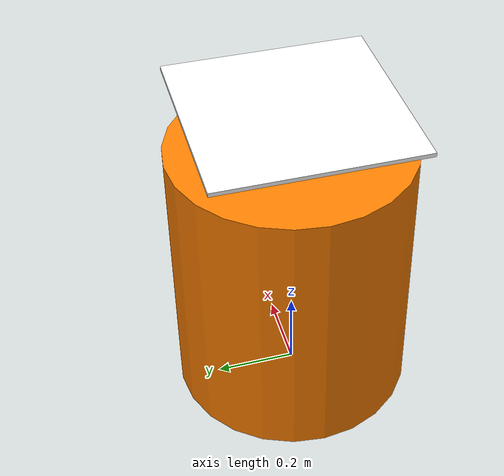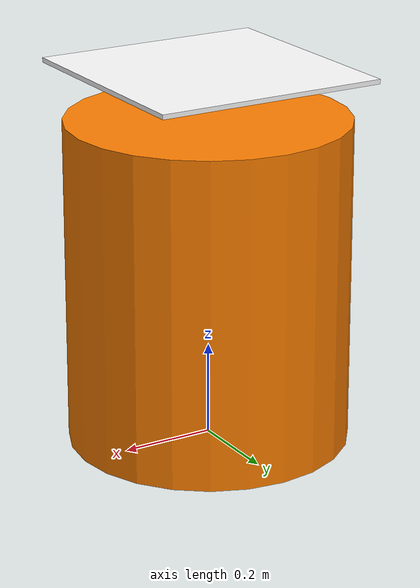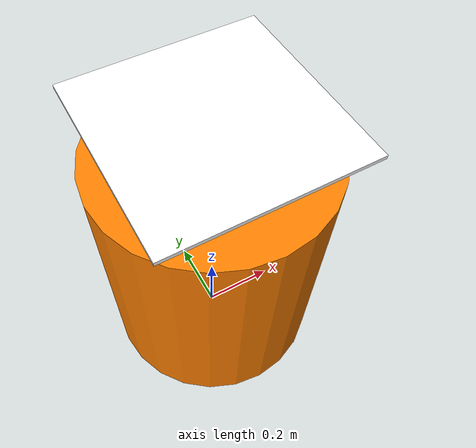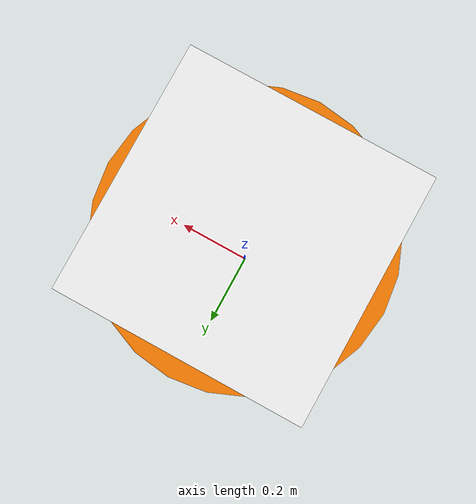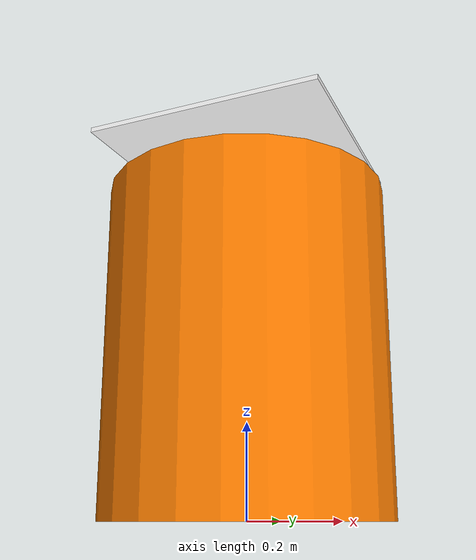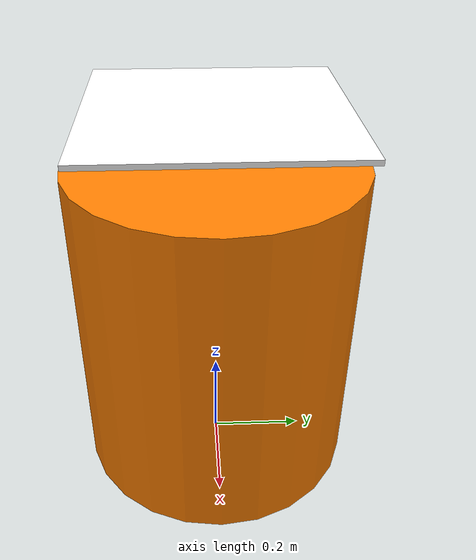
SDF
<?xml version="1.0"?>
<sdf version="1.9">
  <model name="apriltag_cone_0">
    <static>true</static>
    <link name="link">
      <!-- Orange cone base -->
      <visual name="cone">
        <pose>0 0 0.35 0 0 0</pose>
        <geometry>
          <cylinder>
            <radius>0.3</radius>
            <length>0.7</length>
          </cylinder>
        </geometry>
        <material>
          <ambient>1 0.5 0 1</ambient>
          <diffuse>1 0.5 0 1</diffuse>
        </material>
      </visual>

      <!-- AprilTag on top -->
      <visual name="apriltag">
        <pose>0 0 0.8 0 0 0</pose>
        <geometry>
          <box>
            <size>0.5 0.5 0.01</size>
          </box>
        </geometry>
        <material>
          <ambient>1 1 1 1</ambient>
          <diffuse>1 1 1 1</diffuse>
          <pbr>
            <metal>
              <albedo_map>model://apriltag_cone_0/materials/textures/tag36_11_00000.png</albedo_map>
            </metal>
          </pbr>
        </material>
      </visual>

      <collision name="collision">
        <pose>0 0 0.35 0 0 0</pose>
        <geometry>
          <cylinder>
            <radius>0.3</radius>
            <length>0.7</length>
          </cylinder>
        </geometry>
      </collision>
    </link>
  </model>
</sdf>
